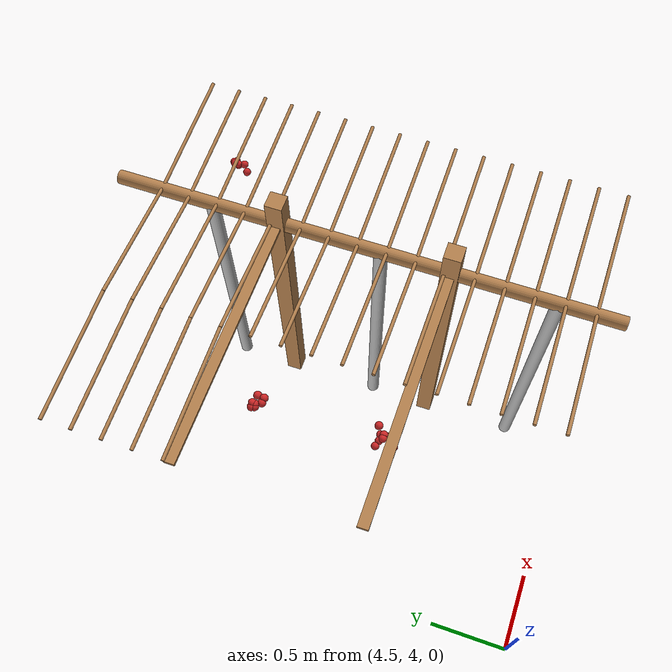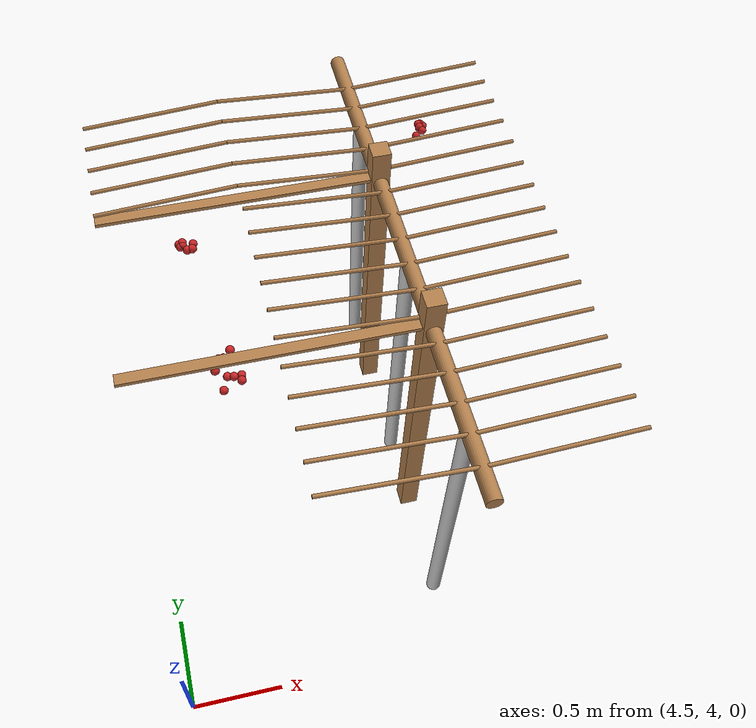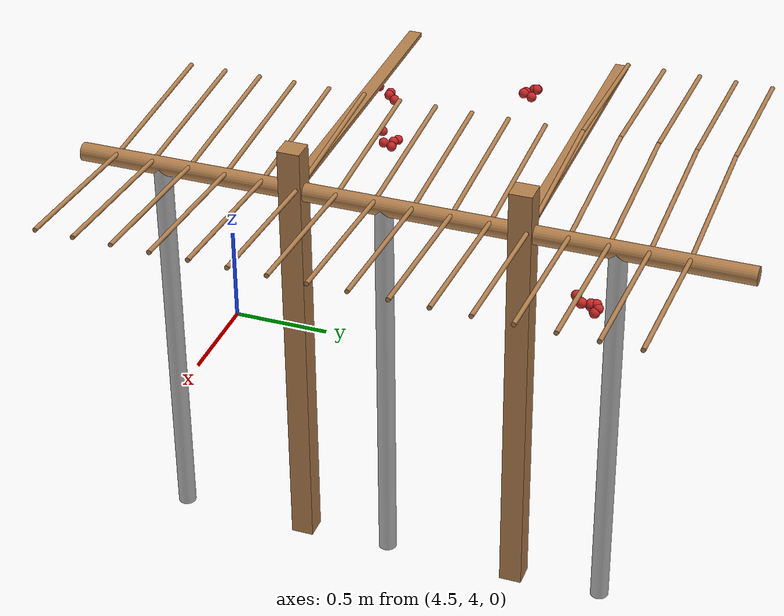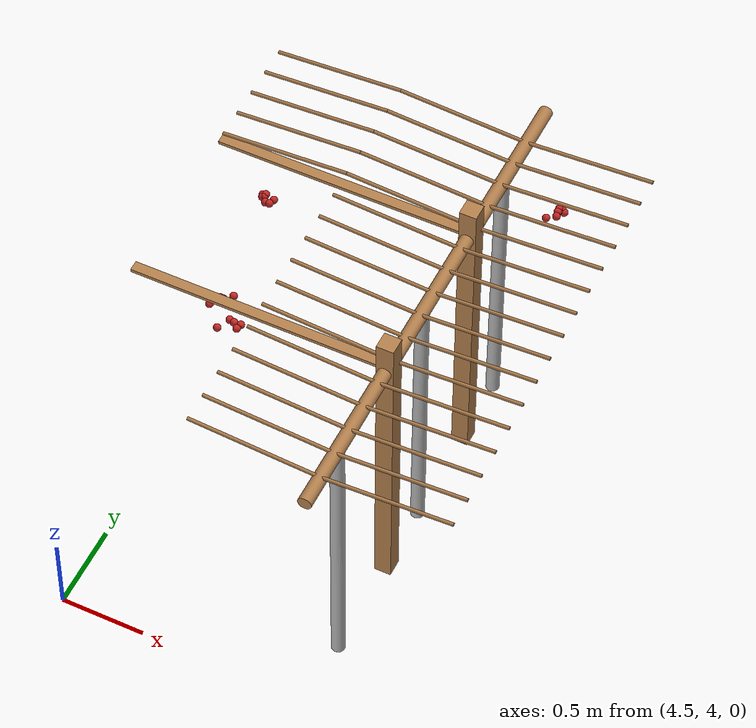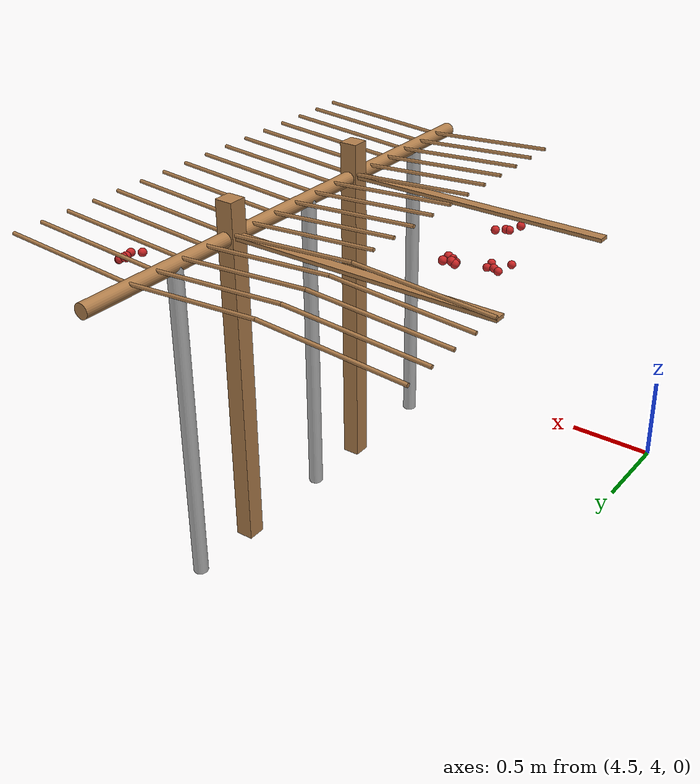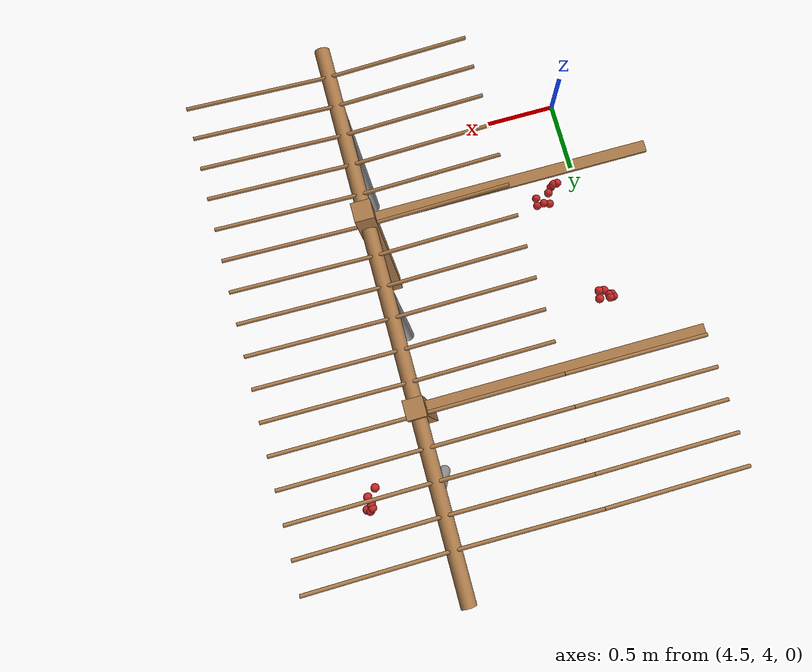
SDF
<sdf version="1.4">
 <model name="pergola">
  <include><name>post_49</name><pose>6.0 5.0 0 0 0 0</pose><uri>model://post</uri></include>
  <include><name>post_50</name><pose>6.0 6.0 0 0 0 0</pose><uri>model://post</uri></include>
  <link name="beam_38">
   <pose>5.25 5.0 1.81 0 0 0</pose>
   <collision name="collision"><geometry><box><size>1.5 0.06 0.02</size></box></geometry></collision>
   <visual name="visual">
    <geometry><box><size>1.5 0.06 0.02</size></box></geometry>
    <material><script><name>Gazebo/Wood</name></script></material>
   </visual>
   <inertial>
    <mass>5</mass>
    <inertia>
     <ixx>0.0016666666666666668</ixx>
     <ixy>0.0</ixy>
     <ixz>0.0</ixz>
     <iyy>0.9390000000000001</iyy>
     <iyz>0.0</iyz>
     <izz>0.9376666666666665</izz>
    </inertia>
   </inertial>
  </link>
  <link name="beam_39">
   <pose>5.25 6.0 1.81 0 0 0</pose>
   <collision name="collision"><geometry><box><size>1.5 0.06 0.02</size></box></geometry></collision>
   <visual name="visual">
    <geometry><box><size>1.5 0.06 0.02</size></box></geometry>
    <material><script><name>Gazebo/Wood</name></script></material>
   </visual>
   <inertial>
    <mass>5</mass>
    <inertia>
     <ixx>0.0016666666666666668</ixx>
     <ixy>0.0</ixy>
     <ixz>0.0</ixz>
     <iyy>0.9390000000000001</iyy>
     <iyz>0.0</iyz>
     <izz>0.9376666666666665</izz>
    </inertia>
   </inertial>
  </link>
  <include><name>tree_44</name><pose>6.0 4.4 0 0 0 0</pose><uri>model://tree_trunk</uri></include>
  <include><name>tree_45</name><pose>6.0 5.4 0 0 0 0</pose><uri>model://tree_trunk</uri></include>
  <include><name>tree_46</name><pose>6.0 6.4 0 0 0 0</pose><uri>model://tree_trunk</uri></include>
  <link name="baseBranch_44">
   <pose>6.0 4.5 1.8 1.5707963267948966 0 0</pose>
   <collision name="collision">
    <geometry><cylinder><radius>0.04</radius><length>0.94</length></cylinder></geometry>
   </collision>
   <visual name="visual">
    <geometry><cylinder><radius>0.04</radius><length>0.94</length></cylinder></geometry>
    <material><script><name>Gazebo/WoodFloor</name></script></material>
   </visual>
   <inertial>
    <mass>10</mass>
    <inertia>
     <ixx>0.7403333333333334</ixx>
     <ixy>0.0</ixy>
     <ixz>0.0</ixz>
     <iyy>0.7403333333333334</iyy>
     <iyz>0.0</iyz>
     <izz>0.008</izz>
    </inertia>
   </inertial>
  </link>
  <link name="baseBranch_45">
   <pose>6.0 5.5 1.8 1.5707963267948966 0 0</pose>
   <collision name="collision">
    <geometry><cylinder><radius>0.04</radius><length>0.94</length></cylinder></geometry>
   </collision>
   <visual name="visual">
    <geometry><cylinder><radius>0.04</radius><length>0.94</length></cylinder></geometry>
    <material><script><name>Gazebo/WoodFloor</name></script></material>
   </visual>
   <inertial>
    <mass>10</mass>
    <inertia>
     <ixx>0.7403333333333334</ixx>
     <ixy>0.0</ixy>
     <ixz>0.0</ixz>
     <iyy>0.7403333333333334</iyy>
     <iyz>0.0</iyz>
     <izz>0.008</izz>
    </inertia>
   </inertial>
  </link>
  <link name="baseBranch_46">
   <pose>6.0 6.5 1.8 1.5707963267948966 0 0</pose>
   <collision name="collision">
    <geometry><cylinder><radius>0.04</radius><length>0.94</length></cylinder></geometry>
   </collision>
   <visual name="visual">
    <geometry><cylinder><radius>0.04</radius><length>0.94</length></cylinder></geometry>
    <material><script><name>Gazebo/WoodFloor</name></script></material>
   </visual>
   <inertial>
    <mass>10</mass>
    <inertia>
     <ixx>0.7403333333333334</ixx>
     <ixy>0.0</ixy>
     <ixz>0.0</ixz>
     <iyy>0.7403333333333334</iyy>
     <iyz>0.0</iyz>
     <izz>0.008</izz>
    </inertia>
   </inertial>
  </link>
  <link name="vine_411">
   <pose>5.625 4.196666666666666 1.85 0 -1.5042281630190728 0</pose>
   <collision name="collision">
    <geometry><cylinder><radius>0.01</radius><length>0.7516648189186453</length></cylinder></geometry>
   </collision>
   <visual name="visual">
    <geometry><cylinder><radius>0.01</radius><length>0.7516648189186453</length></cylinder></geometry>
    <material><script><name>Gazebo/WoodFloor</name></script></material>
   </visual>
   <inertial>
    <mass>5</mass>
    <inertia>
     <ixx>0.23554166666666657</ixx>
     <ixy>0.0</ixy>
     <ixz>0.0</ixz>
     <iyy>0.23554166666666657</iyy>
     <iyz>0.0</iyz>
     <izz>0.00025</izz>
    </inertia>
   </inertial>
  </link>
  <link name="vine_413">
   <pose>5.625 4.363333333333333 1.85 0 -1.5042281630190728 0</pose>
   <collision name="collision">
    <geometry><cylinder><radius>0.01</radius><length>0.7516648189186453</length></cylinder></geometry>
   </collision>
   <visual name="visual">
    <geometry><cylinder><radius>0.01</radius><length>0.7516648189186453</length></cylinder></geometry>
    <material><script><name>Gazebo/WoodFloor</name></script></material>
   </visual>
   <inertial>
    <mass>5</mass>
    <inertia>
     <ixx>0.23554166666666657</ixx>
     <ixy>0.0</ixy>
     <ixz>0.0</ixz>
     <iyy>0.23554166666666657</iyy>
     <iyz>0.0</iyz>
     <izz>0.00025</izz>
    </inertia>
   </inertial>
  </link>
  <link name="vine_415">
   <pose>5.625 4.53 1.85 0 -1.5042281630190728 0</pose>
   <collision name="collision">
    <geometry><cylinder><radius>0.01</radius><length>0.7516648189186453</length></cylinder></geometry>
   </collision>
   <visual name="visual">
    <geometry><cylinder><radius>0.01</radius><length>0.7516648189186453</length></cylinder></geometry>
    <material><script><name>Gazebo/WoodFloor</name></script></material>
   </visual>
   <inertial>
    <mass>5</mass>
    <inertia>
     <ixx>0.23554166666666657</ixx>
     <ixy>0.0</ixy>
     <ixz>0.0</ixz>
     <iyy>0.23554166666666657</iyy>
     <iyz>0.0</iyz>
     <izz>0.00025</izz>
    </inertia>
   </inertial>
  </link>
  <link name="vine_417">
   <pose>5.625 4.696666666666666 1.85 0 -1.5042281630190728 0</pose>
   <collision name="collision">
    <geometry><cylinder><radius>0.01</radius><length>0.7516648189186453</length></cylinder></geometry>
   </collision>
   <visual name="visual">
    <geometry><cylinder><radius>0.01</radius><length>0.7516648189186453</length></cylinder></geometry>
    <material><script><name>Gazebo/WoodFloor</name></script></material>
   </visual>
   <inertial>
    <mass>5</mass>
    <inertia>
     <ixx>0.23554166666666657</ixx>
     <ixy>0.0</ixy>
     <ixz>0.0</ixz>
     <iyy>0.23554166666666657</iyy>
     <iyz>0.0</iyz>
     <izz>0.00025</izz>
    </inertia>
   </inertial>
  </link>
  <link name="vine_419">
   <pose>5.625 4.863333333333333 1.85 0 -1.5042281630190728 0</pose>
   <collision name="collision">
    <geometry><cylinder><radius>0.01</radius><length>0.7516648189186453</length></cylinder></geometry>
   </collision>
   <visual name="visual">
    <geometry><cylinder><radius>0.01</radius><length>0.7516648189186453</length></cylinder></geometry>
    <material><script><name>Gazebo/WoodFloor</name></script></material>
   </visual>
   <inertial>
    <mass>5</mass>
    <inertia>
     <ixx>0.23554166666666657</ixx>
     <ixy>0.0</ixy>
     <ixz>0.0</ixz>
     <iyy>0.23554166666666657</iyy>
     <iyz>0.0</iyz>
     <izz>0.00025</izz>
    </inertia>
   </inertial>
  </link>
  <link name="vine_421">
   <pose>5.625 5.03 1.85 0 -1.5042281630190728 0</pose>
   <collision name="collision">
    <geometry><cylinder><radius>0.01</radius><length>0.7516648189186453</length></cylinder></geometry>
   </collision>
   <visual name="visual">
    <geometry><cylinder><radius>0.01</radius><length>0.7516648189186453</length></cylinder></geometry>
    <material><script><name>Gazebo/WoodFloor</name></script></material>
   </visual>
   <inertial>
    <mass>5</mass>
    <inertia>
     <ixx>0.23554166666666657</ixx>
     <ixy>0.0</ixy>
     <ixz>0.0</ixz>
     <iyy>0.23554166666666657</iyy>
     <iyz>0.0</iyz>
     <izz>0.00025</izz>
    </inertia>
   </inertial>
  </link>
  <link name="vine_423">
   <pose>5.625 5.196666666666666 1.85 0 -1.5042281630190728 0</pose>
   <collision name="collision">
    <geometry><cylinder><radius>0.01</radius><length>0.7516648189186453</length></cylinder></geometry>
   </collision>
   <visual name="visual">
    <geometry><cylinder><radius>0.01</radius><length>0.7516648189186453</length></cylinder></geometry>
    <material><script><name>Gazebo/WoodFloor</name></script></material>
   </visual>
   <inertial>
    <mass>5</mass>
    <inertia>
     <ixx>0.23554166666666657</ixx>
     <ixy>0.0</ixy>
     <ixz>0.0</ixz>
     <iyy>0.23554166666666657</iyy>
     <iyz>0.0</iyz>
     <izz>0.00025</izz>
    </inertia>
   </inertial>
  </link>
  <link name="vine_425">
   <pose>5.625 5.363333333333333 1.85 0 -1.5042281630190728 0</pose>
   <collision name="collision">
    <geometry><cylinder><radius>0.01</radius><length>0.7516648189186453</length></cylinder></geometry>
   </collision>
   <visual name="visual">
    <geometry><cylinder><radius>0.01</radius><length>0.7516648189186453</length></cylinder></geometry>
    <material><script><name>Gazebo/WoodFloor</name></script></material>
   </visual>
   <inertial>
    <mass>5</mass>
    <inertia>
     <ixx>0.23554166666666657</ixx>
     <ixy>0.0</ixy>
     <ixz>0.0</ixz>
     <iyy>0.23554166666666657</iyy>
     <iyz>0.0</iyz>
     <izz>0.00025</izz>
    </inertia>
   </inertial>
  </link>
  <link name="vine_427">
   <pose>5.625 5.53 1.85 0 -1.5042281630190728 0</pose>
   <collision name="collision">
    <geometry><cylinder><radius>0.01</radius><length>0.7516648189186453</length></cylinder></geometry>
   </collision>
   <visual name="visual">
    <geometry><cylinder><radius>0.01</radius><length>0.7516648189186453</length></cylinder></geometry>
    <material><script><name>Gazebo/WoodFloor</name></script></material>
   </visual>
   <inertial>
    <mass>5</mass>
    <inertia>
     <ixx>0.23554166666666657</ixx>
     <ixy>0.0</ixy>
     <ixz>0.0</ixz>
     <iyy>0.23554166666666657</iyy>
     <iyz>0.0</iyz>
     <izz>0.00025</izz>
    </inertia>
   </inertial>
  </link>
  <link name="vine_429">
   <pose>5.625 5.696666666666666 1.85 0 -1.5042281630190728 0</pose>
   <collision name="collision">
    <geometry><cylinder><radius>0.01</radius><length>0.7516648189186453</length></cylinder></geometry>
   </collision>
   <visual name="visual">
    <geometry><cylinder><radius>0.01</radius><length>0.7516648189186453</length></cylinder></geometry>
    <material><script><name>Gazebo/WoodFloor</name></script></material>
   </visual>
   <inertial>
    <mass>5</mass>
    <inertia>
     <ixx>0.23554166666666657</ixx>
     <ixy>0.0</ixy>
     <ixz>0.0</ixz>
     <iyy>0.23554166666666657</iyy>
     <iyz>0.0</iyz>
     <izz>0.00025</izz>
    </inertia>
   </inertial>
  </link>
  <link name="vine_431">
   <pose>5.625 5.863333333333333 1.85 0 -1.5042281630190728 0</pose>
   <collision name="collision">
    <geometry><cylinder><radius>0.01</radius><length>0.7516648189186453</length></cylinder></geometry>
   </collision>
   <visual name="visual">
    <geometry><cylinder><radius>0.01</radius><length>0.7516648189186453</length></cylinder></geometry>
    <material><script><name>Gazebo/WoodFloor</name></script></material>
   </visual>
   <inertial>
    <mass>5</mass>
    <inertia>
     <ixx>0.23554166666666657</ixx>
     <ixy>0.0</ixy>
     <ixz>0.0</ixz>
     <iyy>0.23554166666666657</iyy>
     <iyz>0.0</iyz>
     <izz>0.00025</izz>
    </inertia>
   </inertial>
  </link>
  <link name="vine_432">
   <pose>4.875 6.03 1.85 0 1.5042281630190728 0</pose>
   <collision name="collision">
    <geometry><cylinder><radius>0.01</radius><length>0.7516648189186453</length></cylinder></geometry>
   </collision>
   <visual name="visual">
    <geometry><cylinder><radius>0.01</radius><length>0.7516648189186453</length></cylinder></geometry>
    <material><script><name>Gazebo/WoodFloor</name></script></material>
   </visual>
   <inertial>
    <mass>5</mass>
    <inertia>
     <ixx>0.23554166666666657</ixx>
     <ixy>0.0</ixy>
     <ixz>0.0</ixz>
     <iyy>0.23554166666666657</iyy>
     <iyz>0.0</iyz>
     <izz>0.00025</izz>
    </inertia>
   </inertial>
  </link>
  <link name="vine_433">
   <pose>5.625 6.03 1.85 0 -1.5042281630190728 0</pose>
   <collision name="collision">
    <geometry><cylinder><radius>0.01</radius><length>0.7516648189186453</length></cylinder></geometry>
   </collision>
   <visual name="visual">
    <geometry><cylinder><radius>0.01</radius><length>0.7516648189186453</length></cylinder></geometry>
    <material><script><name>Gazebo/WoodFloor</name></script></material>
   </visual>
   <inertial>
    <mass>5</mass>
    <inertia>
     <ixx>0.23554166666666657</ixx>
     <ixy>0.0</ixy>
     <ixz>0.0</ixz>
     <iyy>0.23554166666666657</iyy>
     <iyz>0.0</iyz>
     <izz>0.00025</izz>
    </inertia>
   </inertial>
  </link>
  <link name="vine_434">
   <pose>4.875 6.196666666666666 1.85 0 1.5042281630190728 0</pose>
   <collision name="collision">
    <geometry><cylinder><radius>0.01</radius><length>0.7516648189186453</length></cylinder></geometry>
   </collision>
   <visual name="visual">
    <geometry><cylinder><radius>0.01</radius><length>0.7516648189186453</length></cylinder></geometry>
    <material><script><name>Gazebo/WoodFloor</name></script></material>
   </visual>
   <inertial>
    <mass>5</mass>
    <inertia>
     <ixx>0.23554166666666657</ixx>
     <ixy>0.0</ixy>
     <ixz>0.0</ixz>
     <iyy>0.23554166666666657</iyy>
     <iyz>0.0</iyz>
     <izz>0.00025</izz>
    </inertia>
   </inertial>
  </link>
  <link name="vine_435">
   <pose>5.625 6.196666666666666 1.85 0 -1.5042281630190728 0</pose>
   <collision name="collision">
    <geometry><cylinder><radius>0.01</radius><length>0.7516648189186453</length></cylinder></geometry>
   </collision>
   <visual name="visual">
    <geometry><cylinder><radius>0.01</radius><length>0.7516648189186453</length></cylinder></geometry>
    <material><script><name>Gazebo/WoodFloor</name></script></material>
   </visual>
   <inertial>
    <mass>5</mass>
    <inertia>
     <ixx>0.23554166666666657</ixx>
     <ixy>0.0</ixy>
     <ixz>0.0</ixz>
     <iyy>0.23554166666666657</iyy>
     <iyz>0.0</iyz>
     <izz>0.00025</izz>
    </inertia>
   </inertial>
  </link>
  <link name="vine_436">
   <pose>4.875 6.363333333333333 1.85 0 1.5042281630190728 0</pose>
   <collision name="collision">
    <geometry><cylinder><radius>0.01</radius><length>0.7516648189186453</length></cylinder></geometry>
   </collision>
   <visual name="visual">
    <geometry><cylinder><radius>0.01</radius><length>0.7516648189186453</length></cylinder></geometry>
    <material><script><name>Gazebo/WoodFloor</name></script></material>
   </visual>
   <inertial>
    <mass>5</mass>
    <inertia>
     <ixx>0.23554166666666657</ixx>
     <ixy>0.0</ixy>
     <ixz>0.0</ixz>
     <iyy>0.23554166666666657</iyy>
     <iyz>0.0</iyz>
     <izz>0.00025</izz>
    </inertia>
   </inertial>
  </link>
  <link name="vine_437">
   <pose>5.625 6.363333333333333 1.85 0 -1.5042281630190728 0</pose>
   <collision name="collision">
    <geometry><cylinder><radius>0.01</radius><length>0.7516648189186453</length></cylinder></geometry>
   </collision>
   <visual name="visual">
    <geometry><cylinder><radius>0.01</radius><length>0.7516648189186453</length></cylinder></geometry>
    <material><script><name>Gazebo/WoodFloor</name></script></material>
   </visual>
   <inertial>
    <mass>5</mass>
    <inertia>
     <ixx>0.23554166666666657</ixx>
     <ixy>0.0</ixy>
     <ixz>0.0</ixz>
     <iyy>0.23554166666666657</iyy>
     <iyz>0.0</iyz>
     <izz>0.00025</izz>
    </inertia>
   </inertial>
  </link>
  <link name="vine_438">
   <pose>4.875 6.53 1.85 0 1.5042281630190728 0</pose>
   <collision name="collision">
    <geometry><cylinder><radius>0.01</radius><length>0.7516648189186453</length></cylinder></geometry>
   </collision>
   <visual name="visual">
    <geometry><cylinder><radius>0.01</radius><length>0.7516648189186453</length></cylinder></geometry>
    <material><script><name>Gazebo/WoodFloor</name></script></material>
   </visual>
   <inertial>
    <mass>5</mass>
    <inertia>
     <ixx>0.23554166666666657</ixx>
     <ixy>0.0</ixy>
     <ixz>0.0</ixz>
     <iyy>0.23554166666666657</iyy>
     <iyz>0.0</iyz>
     <izz>0.00025</izz>
    </inertia>
   </inertial>
  </link>
  <link name="vine_439">
   <pose>5.625 6.53 1.85 0 -1.5042281630190728 0</pose>
   <collision name="collision">
    <geometry><cylinder><radius>0.01</radius><length>0.7516648189186453</length></cylinder></geometry>
   </collision>
   <visual name="visual">
    <geometry><cylinder><radius>0.01</radius><length>0.7516648189186453</length></cylinder></geometry>
    <material><script><name>Gazebo/WoodFloor</name></script></material>
   </visual>
   <inertial>
    <mass>5</mass>
    <inertia>
     <ixx>0.23554166666666657</ixx>
     <ixy>0.0</ixy>
     <ixz>0.0</ixz>
     <iyy>0.23554166666666657</iyy>
     <iyz>0.0</iyz>
     <izz>0.00025</izz>
    </inertia>
   </inertial>
  </link>
  <link name="vine_440">
   <pose>4.875 6.696666666666666 1.85 0 1.5042281630190728 0</pose>
   <collision name="collision">
    <geometry><cylinder><radius>0.01</radius><length>0.7516648189186453</length></cylinder></geometry>
   </collision>
   <visual name="visual">
    <geometry><cylinder><radius>0.01</radius><length>0.7516648189186453</length></cylinder></geometry>
    <material><script><name>Gazebo/WoodFloor</name></script></material>
   </visual>
   <inertial>
    <mass>5</mass>
    <inertia>
     <ixx>0.23554166666666657</ixx>
     <ixy>0.0</ixy>
     <ixz>0.0</ixz>
     <iyy>0.23554166666666657</iyy>
     <iyz>0.0</iyz>
     <izz>0.00025</izz>
    </inertia>
   </inertial>
  </link>
  <link name="vine_441">
   <pose>5.625 6.696666666666666 1.85 0 -1.5042281630190728 0</pose>
   <collision name="collision">
    <geometry><cylinder><radius>0.01</radius><length>0.7516648189186453</length></cylinder></geometry>
   </collision>
   <visual name="visual">
    <geometry><cylinder><radius>0.01</radius><length>0.7516648189186453</length></cylinder></geometry>
    <material><script><name>Gazebo/WoodFloor</name></script></material>
   </visual>
   <inertial>
    <mass>5</mass>
    <inertia>
     <ixx>0.23554166666666657</ixx>
     <ixy>0.0</ixy>
     <ixz>0.0</ixz>
     <iyy>0.23554166666666657</iyy>
     <iyz>0.0</iyz>
     <izz>0.00025</izz>
    </inertia>
   </inertial>
  </link>
  <link name="vine_530">
   <pose>6.375 4.196666666666666 1.85 0 1.5042281630190728 0</pose>
   <collision name="collision">
    <geometry><cylinder><radius>0.01</radius><length>0.7516648189186453</length></cylinder></geometry>
   </collision>
   <visual name="visual">
    <geometry><cylinder><radius>0.01</radius><length>0.7516648189186453</length></cylinder></geometry>
    <material><script><name>Gazebo/WoodFloor</name></script></material>
   </visual>
   <inertial>
    <mass>5</mass>
    <inertia>
     <ixx>0.23554166666666657</ixx>
     <ixy>0.0</ixy>
     <ixz>0.0</ixz>
     <iyy>0.23554166666666657</iyy>
     <iyz>0.0</iyz>
     <izz>0.00025</izz>
    </inertia>
   </inertial>
  </link>
  <link name="vine_532">
   <pose>6.375 4.363333333333333 1.85 0 1.5042281630190728 0</pose>
   <collision name="collision">
    <geometry><cylinder><radius>0.01</radius><length>0.7516648189186453</length></cylinder></geometry>
   </collision>
   <visual name="visual">
    <geometry><cylinder><radius>0.01</radius><length>0.7516648189186453</length></cylinder></geometry>
    <material><script><name>Gazebo/WoodFloor</name></script></material>
   </visual>
   <inertial>
    <mass>5</mass>
    <inertia>
     <ixx>0.23554166666666657</ixx>
     <ixy>0.0</ixy>
     <ixz>0.0</ixz>
     <iyy>0.23554166666666657</iyy>
     <iyz>0.0</iyz>
     <izz>0.00025</izz>
    </inertia>
   </inertial>
  </link>
  <link name="vine_534">
   <pose>6.375 4.53 1.85 0 1.5042281630190728 0</pose>
   <collision name="collision">
    <geometry><cylinder><radius>0.01</radius><length>0.7516648189186453</length></cylinder></geometry>
   </collision>
   <visual name="visual">
    <geometry><cylinder><radius>0.01</radius><length>0.7516648189186453</length></cylinder></geometry>
    <material><script><name>Gazebo/WoodFloor</name></script></material>
   </visual>
   <inertial>
    <mass>5</mass>
    <inertia>
     <ixx>0.23554166666666657</ixx>
     <ixy>0.0</ixy>
     <ixz>0.0</ixz>
     <iyy>0.23554166666666657</iyy>
     <iyz>0.0</iyz>
     <izz>0.00025</izz>
    </inertia>
   </inertial>
  </link>
  <link name="vine_536">
   <pose>6.375 4.696666666666666 1.85 0 1.5042281630190728 0</pose>
   <collision name="collision">
    <geometry><cylinder><radius>0.01</radius><length>0.7516648189186453</length></cylinder></geometry>
   </collision>
   <visual name="visual">
    <geometry><cylinder><radius>0.01</radius><length>0.7516648189186453</length></cylinder></geometry>
    <material><script><name>Gazebo/WoodFloor</name></script></material>
   </visual>
   <inertial>
    <mass>5</mass>
    <inertia>
     <ixx>0.23554166666666657</ixx>
     <ixy>0.0</ixy>
     <ixz>0.0</ixz>
     <iyy>0.23554166666666657</iyy>
     <iyz>0.0</iyz>
     <izz>0.00025</izz>
    </inertia>
   </inertial>
  </link>
  <link name="vine_538">
   <pose>6.375 4.863333333333333 1.85 0 1.5042281630190728 0</pose>
   <collision name="collision">
    <geometry><cylinder><radius>0.01</radius><length>0.7516648189186453</length></cylinder></geometry>
   </collision>
   <visual name="visual">
    <geometry><cylinder><radius>0.01</radius><length>0.7516648189186453</length></cylinder></geometry>
    <material><script><name>Gazebo/WoodFloor</name></script></material>
   </visual>
   <inertial>
    <mass>5</mass>
    <inertia>
     <ixx>0.23554166666666657</ixx>
     <ixy>0.0</ixy>
     <ixz>0.0</ixz>
     <iyy>0.23554166666666657</iyy>
     <iyz>0.0</iyz>
     <izz>0.00025</izz>
    </inertia>
   </inertial>
  </link>
  <link name="vine_540">
   <pose>6.375 5.03 1.85 0 1.5042281630190728 0</pose>
   <collision name="collision">
    <geometry><cylinder><radius>0.01</radius><length>0.7516648189186453</length></cylinder></geometry>
   </collision>
   <visual name="visual">
    <geometry><cylinder><radius>0.01</radius><length>0.7516648189186453</length></cylinder></geometry>
    <material><script><name>Gazebo/WoodFloor</name></script></material>
   </visual>
   <inertial>
    <mass>5</mass>
    <inertia>
     <ixx>0.23554166666666657</ixx>
     <ixy>0.0</ixy>
     <ixz>0.0</ixz>
     <iyy>0.23554166666666657</iyy>
     <iyz>0.0</iyz>
     <izz>0.00025</izz>
    </inertia>
   </inertial>
  </link>
  <link name="vine_542">
   <pose>6.375 5.196666666666666 1.85 0 1.5042281630190728 0</pose>
   <collision name="collision">
    <geometry><cylinder><radius>0.01</radius><length>0.7516648189186453</length></cylinder></geometry>
   </collision>
   <visual name="visual">
    <geometry><cylinder><radius>0.01</radius><length>0.7516648189186453</length></cylinder></geometry>
    <material><script><name>Gazebo/WoodFloor</name></script></material>
   </visual>
   <inertial>
    <mass>5</mass>
    <inertia>
     <ixx>0.23554166666666657</ixx>
     <ixy>0.0</ixy>
     <ixz>0.0</ixz>
     <iyy>0.23554166666666657</iyy>
     <iyz>0.0</iyz>
     <izz>0.00025</izz>
    </inertia>
   </inertial>
  </link>
  <link name="vine_544">
   <pose>6.375 5.363333333333333 1.85 0 1.5042281630190728 0</pose>
   <collision name="collision">
    <geometry><cylinder><radius>0.01</radius><length>0.7516648189186453</length></cylinder></geometry>
   </collision>
   <visual name="visual">
    <geometry><cylinder><radius>0.01</radius><length>0.7516648189186453</length></cylinder></geometry>
    <material><script><name>Gazebo/WoodFloor</name></script></material>
   </visual>
   <inertial>
    <mass>5</mass>
    <inertia>
     <ixx>0.23554166666666657</ixx>
     <ixy>0.0</ixy>
     <ixz>0.0</ixz>
     <iyy>0.23554166666666657</iyy>
     <iyz>0.0</iyz>
     <izz>0.00025</izz>
    </inertia>
   </inertial>
  </link>
  <link name="vine_546">
   <pose>6.375 5.53 1.85 0 1.5042281630190728 0</pose>
   <collision name="collision">
    <geometry><cylinder><radius>0.01</radius><length>0.7516648189186453</length></cylinder></geometry>
   </collision>
   <visual name="visual">
    <geometry><cylinder><radius>0.01</radius><length>0.7516648189186453</length></cylinder></geometry>
    <material><script><name>Gazebo/WoodFloor</name></script></material>
   </visual>
   <inertial>
    <mass>5</mass>
    <inertia>
     <ixx>0.23554166666666657</ixx>
     <ixy>0.0</ixy>
     <ixz>0.0</ixz>
     <iyy>0.23554166666666657</iyy>
     <iyz>0.0</iyz>
     <izz>0.00025</izz>
    </inertia>
   </inertial>
  </link>
  <link name="vine_548">
   <pose>6.375 5.696666666666666 1.85 0 1.5042281630190728 0</pose>
   <collision name="collision">
    <geometry><cylinder><radius>0.01</radius><length>0.7516648189186453</length></cylinder></geometry>
   </collision>
   <visual name="visual">
    <geometry><cylinder><radius>0.01</radius><length>0.7516648189186453</length></cylinder></geometry>
    <material><script><name>Gazebo/WoodFloor</name></script></material>
   </visual>
   <inertial>
    <mass>5</mass>
    <inertia>
     <ixx>0.23554166666666657</ixx>
     <ixy>0.0</ixy>
     <ixz>0.0</ixz>
     <iyy>0.23554166666666657</iyy>
     <iyz>0.0</iyz>
     <izz>0.00025</izz>
    </inertia>
   </inertial>
  </link>
  <link name="vine_550">
   <pose>6.375 5.863333333333333 1.85 0 1.5042281630190728 0</pose>
   <collision name="collision">
    <geometry><cylinder><radius>0.01</radius><length>0.7516648189186453</length></cylinder></geometry>
   </collision>
   <visual name="visual">
    <geometry><cylinder><radius>0.01</radius><length>0.7516648189186453</length></cylinder></geometry>
    <material><script><name>Gazebo/WoodFloor</name></script></material>
   </visual>
   <inertial>
    <mass>5</mass>
    <inertia>
     <ixx>0.23554166666666657</ixx>
     <ixy>0.0</ixy>
     <ixz>0.0</ixz>
     <iyy>0.23554166666666657</iyy>
     <iyz>0.0</iyz>
     <izz>0.00025</izz>
    </inertia>
   </inertial>
  </link>
  <link name="vine_552">
   <pose>6.375 6.03 1.85 0 1.5042281630190728 0</pose>
   <collision name="collision">
    <geometry><cylinder><radius>0.01</radius><length>0.7516648189186453</length></cylinder></geometry>
   </collision>
   <visual name="visual">
    <geometry><cylinder><radius>0.01</radius><length>0.7516648189186453</length></cylinder></geometry>
    <material><script><name>Gazebo/WoodFloor</name></script></material>
   </visual>
   <inertial>
    <mass>5</mass>
    <inertia>
     <ixx>0.23554166666666657</ixx>
     <ixy>0.0</ixy>
     <ixz>0.0</ixz>
     <iyy>0.23554166666666657</iyy>
     <iyz>0.0</iyz>
     <izz>0.00025</izz>
    </inertia>
   </inertial>
  </link>
  <link name="vine_554">
   <pose>6.375 6.196666666666666 1.85 0 1.5042281630190728 0</pose>
   <collision name="collision">
    <geometry><cylinder><radius>0.01</radius><length>0.7516648189186453</length></cylinder></geometry>
   </collision>
   <visual name="visual">
    <geometry><cylinder><radius>0.01</radius><length>0.7516648189186453</length></cylinder></geometry>
    <material><script><name>Gazebo/WoodFloor</name></script></material>
   </visual>
   <inertial>
    <mass>5</mass>
    <inertia>
     <ixx>0.23554166666666657</ixx>
     <ixy>0.0</ixy>
     <ixz>0.0</ixz>
     <iyy>0.23554166666666657</iyy>
     <iyz>0.0</iyz>
     <izz>0.00025</izz>
    </inertia>
   </inertial>
  </link>
  <link name="vine_556">
   <pose>6.375 6.363333333333333 1.85 0 1.5042281630190728 0</pose>
   <collision name="collision">
    <geometry><cylinder><radius>0.01</radius><length>0.7516648189186453</length></cylinder></geometry>
   </collision>
   <visual name="visual">
    <geometry><cylinder><radius>0.01</radius><length>0.7516648189186453</length></cylinder></geometry>
    <material><script><name>Gazebo/WoodFloor</name></script></material>
   </visual>
   <inertial>
    <mass>5</mass>
    <inertia>
     <ixx>0.23554166666666657</ixx>
     <ixy>0.0</ixy>
     <ixz>0.0</ixz>
     <iyy>0.23554166666666657</iyy>
     <iyz>0.0</iyz>
     <izz>0.00025</izz>
    </inertia>
   </inertial>
  </link>
  <link name="vine_558">
   <pose>6.375 6.53 1.85 0 1.5042281630190728 0</pose>
   <collision name="collision">
    <geometry><cylinder><radius>0.01</radius><length>0.7516648189186453</length></cylinder></geometry>
   </collision>
   <visual name="visual">
    <geometry><cylinder><radius>0.01</radius><length>0.7516648189186453</length></cylinder></geometry>
    <material><script><name>Gazebo/WoodFloor</name></script></material>
   </visual>
   <inertial>
    <mass>5</mass>
    <inertia>
     <ixx>0.23554166666666657</ixx>
     <ixy>0.0</ixy>
     <ixz>0.0</ixz>
     <iyy>0.23554166666666657</iyy>
     <iyz>0.0</iyz>
     <izz>0.00025</izz>
    </inertia>
   </inertial>
  </link>
  <link name="vine_560">
   <pose>6.375 6.696666666666666 1.85 0 1.5042281630190728 0</pose>
   <collision name="collision">
    <geometry><cylinder><radius>0.01</radius><length>0.7516648189186453</length></cylinder></geometry>
   </collision>
   <visual name="visual">
    <geometry><cylinder><radius>0.01</radius><length>0.7516648189186453</length></cylinder></geometry>
    <material><script><name>Gazebo/WoodFloor</name></script></material>
   </visual>
   <inertial>
    <mass>5</mass>
    <inertia>
     <ixx>0.23554166666666657</ixx>
     <ixy>0.0</ixy>
     <ixz>0.0</ixz>
     <iyy>0.23554166666666657</iyy>
     <iyz>0.0</iyz>
     <izz>0.00025</izz>
    </inertia>
   </inertial>
  </link>
  <link name="fruit_7">
   <pose>4.983817713616804 5.013549250557737 1.545522443749677 0 0 0</pose>
   <collision name="fruit_collision_7"><geometry><sphere><radius>0.022</radius></sphere></geometry></collision>
   <visual name="visual">
    <geometry><sphere><radius>0.022</radius></sphere></geometry>
    <material><script><name>Gazebo/Red</name></script></material>
   </visual>
   <inertial>
    <mass>0.05</mass>
    <inertia>
     <ixx>9.679999999999999e-06</ixx>
     <ixy>0.0</ixy>
     <ixz>0.0</ixz>
     <iyy>9.679999999999999e-06</iyy>
     <iyz>0.0</iyz>
     <izz>9.679999999999999e-06</izz>
    </inertia>
   </inertial>
   <sensor name="fruit_contact_7" type="contact">
    <contact><collision>fruit_collision_7</collision></contact>
   </sensor>
  </link>
  <link name="fruit_66">
   <pose>6.299408584175506 6.314411221446169 1.7522144213118933 0 0 0</pose>
   <collision name="fruit_collision_66"><geometry><sphere><radius>0.022</radius></sphere></geometry></collision>
   <visual name="visual">
    <geometry><sphere><radius>0.022</radius></sphere></geometry>
    <material><script><name>Gazebo/Red</name></script></material>
   </visual>
   <inertial>
    <mass>0.05</mass>
    <inertia>
     <ixx>9.679999999999999e-06</ixx>
     <ixy>0.0</ixy>
     <ixz>0.0</ixz>
     <iyy>9.679999999999999e-06</iyy>
     <iyz>0.0</iyz>
     <izz>9.679999999999999e-06</izz>
    </inertia>
   </inertial>
   <sensor name="fruit_contact_66" type="contact">
    <contact><collision>fruit_collision_66</collision></contact>
   </sensor>
  </link>
  <link name="fruit_93">
   <pose>4.9584596669931225 4.989765700869964 1.7594646189273568 0 0 0</pose>
   <collision name="fruit_collision_93"><geometry><sphere><radius>0.022</radius></sphere></geometry></collision>
   <visual name="visual">
    <geometry><sphere><radius>0.022</radius></sphere></geometry>
    <material><script><name>Gazebo/Red</name></script></material>
   </visual>
   <inertial>
    <mass>0.05</mass>
    <inertia>
     <ixx>9.679999999999999e-06</ixx>
     <ixy>0.0</ixy>
     <ixz>0.0</ixz>
     <iyy>9.679999999999999e-06</iyy>
     <iyz>0.0</iyz>
     <izz>9.679999999999999e-06</izz>
    </inertia>
   </inertial>
   <sensor name="fruit_contact_93" type="contact">
    <contact><collision>fruit_collision_93</collision></contact>
   </sensor>
  </link>
  <link name="fruit_148">
   <pose>4.90030921757849 5.720658255454313 1.8451836294267348 0 0 0</pose>
   <collision name="fruit_collision_148"><geometry><sphere><radius>0.022</radius></sphere></geometry></collision>
   <visual name="visual">
    <geometry><sphere><radius>0.022</radius></sphere></geometry>
    <material><script><name>Gazebo/Red</name></script></material>
   </visual>
   <inertial>
    <mass>0.05</mass>
    <inertia>
     <ixx>9.679999999999999e-06</ixx>
     <ixy>0.0</ixy>
     <ixz>0.0</ixz>
     <iyy>9.679999999999999e-06</iyy>
     <iyz>0.0</iyz>
     <izz>9.679999999999999e-06</izz>
    </inertia>
   </inertial>
   <sensor name="fruit_contact_148" type="contact">
    <contact><collision>fruit_collision_148</collision></contact>
   </sensor>
  </link>
  <link name="fruit_178">
   <pose>4.905375697181016 5.705896330279963 1.844631970255082 0 0 0</pose>
   <collision name="fruit_collision_178"><geometry><sphere><radius>0.022</radius></sphere></geometry></collision>
   <visual name="visual">
    <geometry><sphere><radius>0.022</radius></sphere></geometry>
    <material><script><name>Gazebo/Red</name></script></material>
   </visual>
   <inertial>
    <mass>0.05</mass>
    <inertia>
     <ixx>9.679999999999999e-06</ixx>
     <ixy>0.0</ixy>
     <ixz>0.0</ixz>
     <iyy>9.679999999999999e-06</iyy>
     <iyz>0.0</iyz>
     <izz>9.679999999999999e-06</izz>
    </inertia>
   </inertial>
   <sensor name="fruit_contact_178" type="contact">
    <contact><collision>fruit_collision_178</collision></contact>
   </sensor>
  </link>
  <link name="fruit_192">
   <pose>5.006745747718016 5.0563156181091715 1.7525818512429503 0 0 0</pose>
   <collision name="fruit_collision_192"><geometry><sphere><radius>0.022</radius></sphere></geometry></collision>
   <visual name="visual">
    <geometry><sphere><radius>0.022</radius></sphere></geometry>
    <material><script><name>Gazebo/Red</name></script></material>
   </visual>
   <inertial>
    <mass>0.05</mass>
    <inertia>
     <ixx>9.679999999999999e-06</ixx>
     <ixy>0.0</ixy>
     <ixz>0.0</ixz>
     <iyy>9.679999999999999e-06</iyy>
     <iyz>0.0</iyz>
     <izz>9.679999999999999e-06</izz>
    </inertia>
   </inertial>
   <sensor name="fruit_contact_192" type="contact">
    <contact><collision>fruit_collision_192</collision></contact>
   </sensor>
  </link>
  <link name="fruit_194">
   <pose>5.07958675609531 5.053736286764228 1.544593813734908 0 0 0</pose>
   <collision name="fruit_collision_194"><geometry><sphere><radius>0.022</radius></sphere></geometry></collision>
   <visual name="visual">
    <geometry><sphere><radius>0.022</radius></sphere></geometry>
    <material><script><name>Gazebo/Red</name></script></material>
   </visual>
   <inertial>
    <mass>0.05</mass>
    <inertia>
     <ixx>9.679999999999999e-06</ixx>
     <ixy>0.0</ixy>
     <ixz>0.0</ixz>
     <iyy>9.679999999999999e-06</iyy>
     <iyz>0.0</iyz>
     <izz>9.679999999999999e-06</izz>
    </inertia>
   </inertial>
   <sensor name="fruit_contact_194" type="contact">
    <contact><collision>fruit_collision_194</collision></contact>
   </sensor>
  </link>
  <link name="fruit_230">
   <pose>4.986846455005515 5.05559306270437 1.7533309801636838 0 0 0</pose>
   <collision name="fruit_collision_230"><geometry><sphere><radius>0.022</radius></sphere></geometry></collision>
   <visual name="visual">
    <geometry><sphere><radius>0.022</radius></sphere></geometry>
    <material><script><name>Gazebo/Red</name></script></material>
   </visual>
   <inertial>
    <mass>0.05</mass>
    <inertia>
     <ixx>9.679999999999999e-06</ixx>
     <ixy>0.0</ixy>
     <ixz>0.0</ixz>
     <iyy>9.679999999999999e-06</iyy>
     <iyz>0.0</iyz>
     <izz>9.679999999999999e-06</izz>
    </inertia>
   </inertial>
   <sensor name="fruit_contact_230" type="contact">
    <contact><collision>fruit_collision_230</collision></contact>
   </sensor>
  </link>
  <link name="fruit_235">
   <pose>6.337368128955076 6.3841426266609345 1.7496893166938703 0 0 0</pose>
   <collision name="fruit_collision_235"><geometry><sphere><radius>0.022</radius></sphere></geometry></collision>
   <visual name="visual">
    <geometry><sphere><radius>0.022</radius></sphere></geometry>
    <material><script><name>Gazebo/Red</name></script></material>
   </visual>
   <inertial>
    <mass>0.05</mass>
    <inertia>
     <ixx>9.679999999999999e-06</ixx>
     <ixy>0.0</ixy>
     <ixz>0.0</ixz>
     <iyy>9.679999999999999e-06</iyy>
     <iyz>0.0</iyz>
     <izz>9.679999999999999e-06</izz>
    </inertia>
   </inertial>
   <sensor name="fruit_contact_235" type="contact">
    <contact><collision>fruit_collision_235</collision></contact>
   </sensor>
  </link>
  <link name="fruit_243">
   <pose>5.083422916946099 5.092864171702582 1.5335471483522398 0 0 0</pose>
   <collision name="fruit_collision_243"><geometry><sphere><radius>0.022</radius></sphere></geometry></collision>
   <visual name="visual">
    <geometry><sphere><radius>0.022</radius></sphere></geometry>
    <material><script><name>Gazebo/Red</name></script></material>
   </visual>
   <inertial>
    <mass>0.05</mass>
    <inertia>
     <ixx>9.679999999999999e-06</ixx>
     <ixy>0.0</ixy>
     <ixz>0.0</ixz>
     <iyy>9.679999999999999e-06</iyy>
     <iyz>0.0</iyz>
     <izz>9.679999999999999e-06</izz>
    </inertia>
   </inertial>
   <sensor name="fruit_contact_243" type="contact">
    <contact><collision>fruit_collision_243</collision></contact>
   </sensor>
  </link>
  <link name="fruit_247">
   <pose>6.349602661883872 6.416771626157469 1.7426012874251433 0 0 0</pose>
   <collision name="fruit_collision_247"><geometry><sphere><radius>0.022</radius></sphere></geometry></collision>
   <visual name="visual">
    <geometry><sphere><radius>0.022</radius></sphere></geometry>
    <material><script><name>Gazebo/Red</name></script></material>
   </visual>
   <inertial>
    <mass>0.05</mass>
    <inertia>
     <ixx>9.679999999999999e-06</ixx>
     <ixy>0.0</ixy>
     <ixz>0.0</ixz>
     <iyy>9.679999999999999e-06</iyy>
     <iyz>0.0</iyz>
     <izz>9.679999999999999e-06</izz>
    </inertia>
   </inertial>
   <sensor name="fruit_contact_247" type="contact">
    <contact><collision>fruit_collision_247</collision></contact>
   </sensor>
  </link>
  <link name="fruit_262">
   <pose>6.3654453128969575 6.40792679029462 1.7321621387562325 0 0 0</pose>
   <collision name="fruit_collision_262"><geometry><sphere><radius>0.022</radius></sphere></geometry></collision>
   <visual name="visual">
    <geometry><sphere><radius>0.022</radius></sphere></geometry>
    <material><script><name>Gazebo/Red</name></script></material>
   </visual>
   <inertial>
    <mass>0.05</mass>
    <inertia>
     <ixx>9.679999999999999e-06</ixx>
     <ixy>0.0</ixy>
     <ixz>0.0</ixz>
     <iyy>9.679999999999999e-06</iyy>
     <iyz>0.0</iyz>
     <izz>9.679999999999999e-06</izz>
    </inertia>
   </inertial>
   <sensor name="fruit_contact_262" type="contact">
    <contact><collision>fruit_collision_262</collision></contact>
   </sensor>
  </link>
  <link name="fruit_267">
   <pose>6.336303282514142 6.406002538712031 1.7509411352845718 0 0 0</pose>
   <collision name="fruit_collision_267"><geometry><sphere><radius>0.022</radius></sphere></geometry></collision>
   <visual name="visual">
    <geometry><sphere><radius>0.022</radius></sphere></geometry>
    <material><script><name>Gazebo/Red</name></script></material>
   </visual>
   <inertial>
    <mass>0.05</mass>
    <inertia>
     <ixx>9.679999999999999e-06</ixx>
     <ixy>0.0</ixy>
     <ixz>0.0</ixz>
     <iyy>9.679999999999999e-06</iyy>
     <iyz>0.0</iyz>
     <izz>9.679999999999999e-06</izz>
    </inertia>
   </inertial>
   <sensor name="fruit_contact_267" type="contact">
    <contact><collision>fruit_collision_267</collision></contact>
   </sensor>
  </link>
  <link name="fruit_294">
   <pose>6.345261765508652 6.348052897058683 1.7521266769423738 0 0 0</pose>
   <collision name="fruit_collision_294"><geometry><sphere><radius>0.022</radius></sphere></geometry></collision>
   <visual name="visual">
    <geometry><sphere><radius>0.022</radius></sphere></geometry>
    <material><script><name>Gazebo/Red</name></script></material>
   </visual>
   <inertial>
    <mass>0.05</mass>
    <inertia>
     <ixx>9.679999999999999e-06</ixx>
     <ixy>0.0</ixy>
     <ixz>0.0</ixz>
     <iyy>9.679999999999999e-06</iyy>
     <iyz>0.0</iyz>
     <izz>9.679999999999999e-06</izz>
    </inertia>
   </inertial>
   <sensor name="fruit_contact_294" type="contact">
    <contact><collision>fruit_collision_294</collision></contact>
   </sensor>
  </link>
  <link name="fruit_299">
   <pose>5.04558814791923 5.088864929310891 1.5381924817622978 0 0 0</pose>
   <collision name="fruit_collision_299"><geometry><sphere><radius>0.022</radius></sphere></geometry></collision>
   <visual name="visual">
    <geometry><sphere><radius>0.022</radius></sphere></geometry>
    <material><script><name>Gazebo/Red</name></script></material>
   </visual>
   <inertial>
    <mass>0.05</mass>
    <inertia>
     <ixx>9.679999999999999e-06</ixx>
     <ixy>0.0</ixy>
     <ixz>0.0</ixz>
     <iyy>9.679999999999999e-06</iyy>
     <iyz>0.0</iyz>
     <izz>9.679999999999999e-06</izz>
    </inertia>
   </inertial>
   <sensor name="fruit_contact_299" type="contact">
    <contact><collision>fruit_collision_299</collision></contact>
   </sensor>
  </link>
  <link name="fruit_329">
   <pose>4.917010576361908 5.709190907985963 1.8502439219568656 0 0 0</pose>
   <collision name="fruit_collision_329"><geometry><sphere><radius>0.022</radius></sphere></geometry></collision>
   <visual name="visual">
    <geometry><sphere><radius>0.022</radius></sphere></geometry>
    <material><script><name>Gazebo/Red</name></script></material>
   </visual>
   <inertial>
    <mass>0.05</mass>
    <inertia>
     <ixx>9.679999999999999e-06</ixx>
     <ixy>0.0</ixy>
     <ixz>0.0</ixz>
     <iyy>9.679999999999999e-06</iyy>
     <iyz>0.0</iyz>
     <izz>9.679999999999999e-06</izz>
    </inertia>
   </inertial>
   <sensor name="fruit_contact_329" type="contact">
    <contact><collision>fruit_collision_329</collision></contact>
   </sensor>
  </link>
  <link name="fruit_358">
   <pose>4.936629762385303 5.678954235887246 1.8436859798591563 0 0 0</pose>
   <collision name="fruit_collision_358"><geometry><sphere><radius>0.022</radius></sphere></geometry></collision>
   <visual name="visual">
    <geometry><sphere><radius>0.022</radius></sphere></geometry>
    <material><script><name>Gazebo/Red</name></script></material>
   </visual>
   <inertial>
    <mass>0.05</mass>
    <inertia>
     <ixx>9.679999999999999e-06</ixx>
     <ixy>0.0</ixy>
     <ixz>0.0</ixz>
     <iyy>9.679999999999999e-06</iyy>
     <iyz>0.0</iyz>
     <izz>9.679999999999999e-06</izz>
    </inertia>
   </inertial>
   <sensor name="fruit_contact_358" type="contact">
    <contact><collision>fruit_collision_358</collision></contact>
   </sensor>
  </link>
  <link name="fruit_364">
   <pose>5.01408543958719 5.099236519185059 1.5322033649976978 0 0 0</pose>
   <collision name="fruit_collision_364"><geometry><sphere><radius>0.022</radius></sphere></geometry></collision>
   <visual name="visual">
    <geometry><sphere><radius>0.022</radius></sphere></geometry>
    <material><script><name>Gazebo/Red</name></script></material>
   </visual>
   <inertial>
    <mass>0.05</mass>
    <inertia>
     <ixx>9.679999999999999e-06</ixx>
     <ixy>0.0</ixy>
     <ixz>0.0</ixz>
     <iyy>9.679999999999999e-06</iyy>
     <iyz>0.0</iyz>
     <izz>9.679999999999999e-06</izz>
    </inertia>
   </inertial>
   <sensor name="fruit_contact_364" type="contact">
    <contact><collision>fruit_collision_364</collision></contact>
   </sensor>
  </link>
  <link name="fruit_370">
   <pose>5.045472986215552 5.095235659283267 1.7538809218046316 0 0 0</pose>
   <collision name="fruit_collision_370"><geometry><sphere><radius>0.022</radius></sphere></geometry></collision>
   <visual name="visual">
    <geometry><sphere><radius>0.022</radius></sphere></geometry>
    <material><script><name>Gazebo/Red</name></script></material>
   </visual>
   <inertial>
    <mass>0.05</mass>
    <inertia>
     <ixx>9.679999999999999e-06</ixx>
     <ixy>0.0</ixy>
     <ixz>0.0</ixz>
     <iyy>9.679999999999999e-06</iyy>
     <iyz>0.0</iyz>
     <izz>9.679999999999999e-06</izz>
    </inertia>
   </inertial>
   <sensor name="fruit_contact_370" type="contact">
    <contact><collision>fruit_collision_370</collision></contact>
   </sensor>
  </link>
  <link name="fruit_416">
   <pose>6.337258515752998 6.3846040261816865 1.7413556063176232 0 0 0</pose>
   <collision name="fruit_collision_416"><geometry><sphere><radius>0.022</radius></sphere></geometry></collision>
   <visual name="visual">
    <geometry><sphere><radius>0.022</radius></sphere></geometry>
    <material><script><name>Gazebo/Red</name></script></material>
   </visual>
   <inertial>
    <mass>0.05</mass>
    <inertia>
     <ixx>9.679999999999999e-06</ixx>
     <ixy>0.0</ixy>
     <ixz>0.0</ixz>
     <iyy>9.679999999999999e-06</iyy>
     <iyz>0.0</iyz>
     <izz>9.679999999999999e-06</izz>
    </inertia>
   </inertial>
   <sensor name="fruit_contact_416" type="contact">
    <contact><collision>fruit_collision_416</collision></contact>
   </sensor>
  </link>
  <link name="fruit_425">
   <pose>4.969307662039895 5.713938822149386 1.8418271275303995 0 0 0</pose>
   <collision name="fruit_collision_425"><geometry><sphere><radius>0.022</radius></sphere></geometry></collision>
   <visual name="visual">
    <geometry><sphere><radius>0.022</radius></sphere></geometry>
    <material><script><name>Gazebo/Red</name></script></material>
   </visual>
   <inertial>
    <mass>0.05</mass>
    <inertia>
     <ixx>9.679999999999999e-06</ixx>
     <ixy>0.0</ixy>
     <ixz>0.0</ixz>
     <iyy>9.679999999999999e-06</iyy>
     <iyz>0.0</iyz>
     <izz>9.679999999999999e-06</izz>
    </inertia>
   </inertial>
   <sensor name="fruit_contact_425" type="contact">
    <contact><collision>fruit_collision_425</collision></contact>
   </sensor>
  </link>
  <link name="fruit_437">
   <pose>4.918389430259024 5.721469755323623 1.8550884927203357 0 0 0</pose>
   <collision name="fruit_collision_437"><geometry><sphere><radius>0.022</radius></sphere></geometry></collision>
   <visual name="visual">
    <geometry><sphere><radius>0.022</radius></sphere></geometry>
    <material><script><name>Gazebo/Red</name></script></material>
   </visual>
   <inertial>
    <mass>0.05</mass>
    <inertia>
     <ixx>9.679999999999999e-06</ixx>
     <ixy>0.0</ixy>
     <ixz>0.0</ixz>
     <iyy>9.679999999999999e-06</iyy>
     <iyz>0.0</iyz>
     <izz>9.679999999999999e-06</izz>
    </inertia>
   </inertial>
   <sensor name="fruit_contact_437" type="contact">
    <contact><collision>fruit_collision_437</collision></contact>
   </sensor>
  </link>
  <link name="fruit_499">
   <pose>4.962397280843486 5.675962851231376 1.8503202467975943 0 0 0</pose>
   <collision name="fruit_collision_499"><geometry><sphere><radius>0.022</radius></sphere></geometry></collision>
   <visual name="visual">
    <geometry><sphere><radius>0.022</radius></sphere></geometry>
    <material><script><name>Gazebo/Red</name></script></material>
   </visual>
   <inertial>
    <mass>0.05</mass>
    <inertia>
     <ixx>9.679999999999999e-06</ixx>
     <ixy>0.0</ixy>
     <ixz>0.0</ixz>
     <iyy>9.679999999999999e-06</iyy>
     <iyz>0.0</iyz>
     <izz>9.679999999999999e-06</izz>
    </inertia>
   </inertial>
   <sensor name="fruit_contact_499" type="contact">
    <contact><collision>fruit_collision_499</collision></contact>
   </sensor>
  </link>
 </model>
</sdf>
